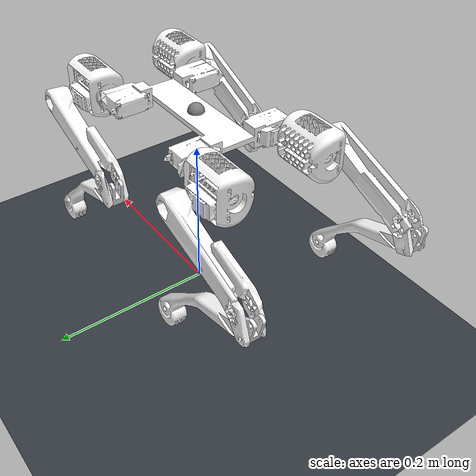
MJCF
<mujoco model="gray">
  <option timestep="0.002" integrator="implicitfast" cone="elliptic" impratio="10" /><compiler angle="radian" meshdir="./" autolimits="true" />

  <asset>
    <mesh name="base_link" content_type="model/stl" file="meshes/base_link.STL" />
    <mesh name="fl_hip" content_type="model/stl" file="meshes/fl_hip.STL" />
    <mesh name="fl_top" content_type="model/stl" file="meshes/fl_top.STL" />
    <mesh name="fl_bottom" content_type="model/stl" file="meshes/fl_bottom.STL" />
    <mesh name="fr_hip" content_type="model/stl" file="meshes/fr_hip.STL" />
    <mesh name="fr_top" content_type="model/stl" file="meshes/fr_top.STL" />
    <mesh name="fr_bottom" content_type="model/stl" file="meshes/fr_bottom.STL" />
    <mesh name="br_hip" content_type="model/stl" file="meshes/br_hip.STL" />
    <mesh name="br_top" content_type="model/stl" file="meshes/br_top.STL" />
    <mesh name="br_bottom" content_type="model/stl" file="meshes/br_bottom.STL" />
    <mesh name="bl_hip" content_type="model/stl" file="meshes/bl_hip.STL" />
    <mesh name="bl_top" content_type="model/stl" file="meshes/bl_top.STL" />
    <mesh name="bl_bottom" content_type="model/stl" file="meshes/bl_bottom.STL" />
  <texture name="grid" type="2d" builtin="checker" rgb1=".18 .20 .23" rgb2=".22 .24 .27" width="512" height="512" /><material name="grid" texture="grid" texrepeat="8 8" reflectance="0.1" /></asset>

  <worldbody>
    <light pos="0 0 2" dir="0 0 -1" directional="true" /><geom name="floor" type="plane" size="0 0 0.05" material="grid" condim="3" friction="0.8 0.005 0.0001" /><body name="base_link" pos="0 0 0.25"><freejoint name="root" /><inertial pos="-0.00000000 -0.00302360 -0.00000000" mass="0.723180" fullinertia="1.274255707e-04 5.217520436e-04 4.291599532e-04 -5.072049529e-21 6.558570651e-22 -2.085469317e-20" /><geom quat="0.707107 0.707107 0 0" type="mesh" contype="0" conaffinity="0" group="1" density="0" rgba="1 1 1 1" mesh="base_link" />
    <geom name="base_link_collision" size="0.0125 0.078781 0.0984" pos="0 0 -0.003" quat="0.707107 1.15612e-07 0.707107 -1.15612e-07" type="box" rgba="1 1 1 1" group="3" />
    <body name="fl_hip" pos="0.0984 0.060681 -0.0030292" quat="0.707107 0.707107 0 0">
      <inertial pos="0.0272971 1.7516e-05 0.0024743" quat="0.00572702 0.70048 0.0059102 0.713624" mass="0.089316" diaginertia="8.03296e-05 6.14064e-05 4.09378e-05" />
      <joint name="fl_hip" pos="0 0 0" axis="1 0 0" range="-2.356200 2.356200" actuatorfrcrange="-1.96 1.96" damping="0.05" frictionloss="0.01" armature="0.003" />
      <geom type="mesh" contype="0" conaffinity="0" group="1" density="0" rgba="1 1 1 1" mesh="fl_hip" />
      <geom name="fl_hip_collision" size="0.022512 0.029381 0.0336165" pos="0.028311 2.1e-05 0.0015" quat="0.706937 -0.00529736 0.707237 -0.00529948" type="box" rgba="1 1 1 1" group="3" />
      <body name="fl_top" pos="0.0386 -0.011483 -0.032232">
        <inertial pos="-0.0327094 -0.0129115 0.006261" quat="-0.0817632 0.681653 0.209568 0.696236" mass="0.106742" diaginertia="0.000113738 0.000112144 1.15416e-05" />
        <joint name="fl_top" pos="0 0 0" axis="0 0 -1" range="-2.356200 2.356200" actuatorfrcrange="-1.96 1.96" damping="0.05" frictionloss="0.01" armature="0.003" />
        <geom type="mesh" contype="0" conaffinity="0" group="1" density="0" rgba="1 1 1 1" mesh="fl_top" />
        <geom name="fl_top_collision" size="0.0206 0.03515 0.084913" pos="-0.06042 -0.027111 0.011157" quat="0.365097 0.359682 0.611701 0.602623" type="box" rgba="1 1 1 1" group="3" />
        <body name="fl_bottom" pos="-0.12132 -0.072387 -0.013569">
          <inertial pos="0.0784822 -0.0448672 0.00348749" quat="0.200781 0.678002 -0.190626 0.680927" mass="0.029326" diaginertia="5.22905e-05 5.16336e-05 2.17725e-06" />
          <joint name="fl_bottom" pos="0 0 0" axis="0 0 -1" range="-2.356200 2.356200" actuatorfrcrange="-1.96 1.96" damping="0.05" frictionloss="0.01" armature="0.003" />
          <geom type="mesh" contype="0" conaffinity="0" group="1" density="0" rgba="1 1 1 1" mesh="fl_bottom" />
          <geom name="fl_shank_collision" type="capsule" fromto="0 0 0 0.137671 -0.100124 0.004461" size="0.012" group="3" rgba="1 1 1 1" /><geom name="fl_bottom_collision" size="0.012" pos="0.137671 -0.100124 0.004461" rgba="1 1 1 1" group="3" />
        </body>
      </body>
    </body>
    <body name="fr_hip" pos="0.0984 -0.060681 -0.0030292" quat="0.707107 0.707107 0 0">
      <inertial pos="0.0272971 9.90276e-05 -0.00247239" quat="-0.0109028 0.713566 -0.0107763 0.700421" mass="0.089316" diaginertia="8.03296e-05 6.14064e-05 4.09378e-05" />
      <joint name="fr_hip" pos="0 0 0" axis="1 0 0" range="-2.356200 2.356200" actuatorfrcrange="-1.96 1.96" damping="0.05" frictionloss="0.01" armature="0.003" />
      <geom type="mesh" contype="0" conaffinity="0" group="1" density="0" rgba="1 1 1 1" mesh="fr_hip" />
      <geom name="fr_hip_collision" size="0.0225 0.029381 0.0336135" pos="0.028314 5e-05 -0.001499" quat="0.707015 0.0113734 0.707015 0.0113734" type="box" rgba="1 1 1 1" group="3" />
      <body name="fr_top" pos="0.0381 -0.012136 0.032026">
        <inertial pos="-0.0327864 -0.0126314 -0.00647694" quat="-0.214268 0.69476 0.0731701 0.682674" mass="0.106736" diaginertia="0.000113732 0.000112157 1.15212e-05" />
        <joint name="fr_top" pos="0 0 0" axis="0 0 1" range="-2.356200 2.356200" actuatorfrcrange="-1.96 1.96" damping="0.05" frictionloss="0.01" armature="0.003" />
        <geom type="mesh" contype="0" conaffinity="0" group="1" density="0" rgba="1 1 1 1" mesh="fr_top" />
        <geom name="fr_top_collision" size="0.0206535 0.03522 0.084926" pos="-0.060519 -0.026677 -0.01161" quat="0.360166 0.368217 0.597598 0.61447" type="box" rgba="1 1 1 1" group="3" />
        <body name="fr_bottom" pos="-0.121749 -0.0718844 0.0123443">
          <inertial pos="0.079147 -0.043374 -0.00421337" quat="0.178591 0.684182 -0.200508 0.678083" mass="0.029326" diaginertia="5.22904e-05 5.16335e-05 2.17725e-06" />
          <joint name="fr_bottom" pos="0 0 0" axis="0 0 1" range="-2.356200 2.356200" actuatorfrcrange="-1.96 1.96" damping="0.05" frictionloss="0.01" armature="0.003" />
          <geom type="mesh" contype="0" conaffinity="0" group="1" density="0" rgba="1 1 1 1" mesh="fr_bottom" />
          <geom name="fr_shank_collision" type="capsule" fromto="0 0 0 0.138941 -0.097521 -0.006355" size="0.012" group="3" rgba="1 1 1 1" /><geom name="fr_bottom_collision" size="0.012" pos="0.138941 -0.097521 -0.006355" rgba="1 1 1 1" group="3" />
        </body>
      </body>
    </body>
    <body name="br_hip" pos="-0.0984 -0.060681 -0.0030292" quat="0.707107 0.707107 0 0">
      <inertial pos="-0.0272971 -6.43744e-05 -0.00247352" quat="0.00586797 0.700479 0.00590231 0.713624" mass="0.089316" diaginertia="8.03296e-05 6.14064e-05 4.09378e-05" />
      <joint name="br_hip" pos="0 0 0" axis="-1 0 0" range="-2.356200 2.356200" actuatorfrcrange="-1.96 1.96" damping="0.05" frictionloss="0.01" armature="0.003" />
      <geom type="mesh" contype="0" conaffinity="0" group="1" density="0" rgba="1 1 1 1" mesh="br_hip" />
      <geom name="br_hip_collision" size="0.022501 0.029381 0.033614" pos="-0.028313 -2.9e-05 -0.0015" quat="0.707065 -0.00641807 0.707091 -0.00641878" type="box" rgba="1 1 1 1" group="3" />
      <body name="br_top" pos="-0.0186 -0.01041 0.0325944">
        <inertial pos="-0.0331307 -0.0121448 -0.0058478" quat="-0.190835 0.701296 0.077611 0.682453" mass="0.106736" diaginertia="0.000113735 0.000112243 1.14326e-05" />
        <joint name="br_top" pos="0 0 0" axis="0 0 1" range="-2.356200 2.356200" actuatorfrcrange="-1.96 1.96" damping="0.05" frictionloss="0.01" armature="0.003" />
        <geom type="mesh" contype="0" conaffinity="0" group="1" density="0" rgba="1 1 1 1" mesh="br_top" />
        <geom name="br_top_collision" size="0.0206 0.03515 0.0849325" pos="-0.061286 -0.025409 -0.01029" quat="0.375932 0.369168 0.606426 0.595515" type="box" rgba="1 1 1 1" group="3" />
        <body name="br_bottom" pos="-0.12368 -0.067775 0.015883">
          <inertial pos="0.079172 -0.0434855 -0.002027" quat="0.195553 0.679529 -0.183188 0.682966" mass="0.029326" diaginertia="5.22905e-05 5.16336e-05 2.17725e-06" />
          <joint name="br_bottom" pos="0 0 0" axis="0 0 1" range="-2.356200 2.356200" actuatorfrcrange="-1.96 1.96" damping="0.05" frictionloss="0.01" armature="0.003" />
          <geom type="mesh" contype="0" conaffinity="0" group="1" density="0" rgba="1 1 1 1" mesh="br_bottom" />
          <geom name="br_shank_collision" type="capsule" fromto="0 0 0 0.138997 -0.097637 -0.001443" size="0.012" group="3" rgba="1 1 1 1" /><geom name="br_bottom_collision" size="0.012" pos="0.138997 -0.097637 -0.001443" rgba="1 1 1 1" group="3" />
        </body>
      </body>
    </body>
    <body name="bl_hip" pos="-0.0984 0.0606812 -0.00302922" quat="0.707107 0.707107 0 0">
      <inertial pos="-0.0272971 -3.03826e-05 0.00247419" quat="-0.00776602 0.713607 -0.00754867 0.700463" mass="0.089316" diaginertia="8.03296e-05 6.14064e-05 4.09378e-05" />
      <joint name="bl_hip" pos="0 0 0" axis="-1 0 0" range="-2.356200 2.356200" actuatorfrcrange="-1.96 1.96" damping="0.05" frictionloss="0.01" armature="0.003" />
      <geom type="mesh" contype="0" conaffinity="0" group="1" density="0" rgba="1 1 1 1" mesh="bl_hip" />
      <geom name="bl_hip_collision" size="0.022536 0.029381 0.033624" pos="-0.028303 -2.9e-05 0.001499" quat="0.00716851 -0.706625 -0.00717794 0.707515" type="box" rgba="1 1 1 1" group="3" />
      <body name="bl_top" pos="-0.0181 -0.0103449 -0.0326151">
        <inertial pos="-0.033292 -0.0117614 0.00583146" quat="-0.0719708 0.683247 0.187305 0.702076" mass="0.106742" diaginertia="0.000113743 0.00011229 1.13915e-05" />
        <joint name="bl_top" pos="0 0 0" axis="0 0 -1" range="-2.356200 2.356200" actuatorfrcrange="-1.96 1.96" damping="0.05" frictionloss="0.01" armature="0.003" />
        <geom type="mesh" contype="0" conaffinity="0" group="1" density="0" rgba="1 1 1 1" mesh="bl_top" />
        <geom name="bl_top_collision" size="0.0205955 0.035213 0.0849245" pos="-0.061615 -0.024574 0.010253" quat="0.372869 0.380391 0.592728 0.604107" type="box" rgba="1 1 1 1" group="3" />
        <body name="bl_bottom" pos="-0.124596 -0.0660534 -0.0159843">
          <inertial pos="0.081727 -0.0387449 0.00203601" quat="0.16228 0.688234 -0.176119 0.684822" mass="0.029326" diaginertia="5.22904e-05 5.16336e-05 2.17721e-06" />
          <joint name="bl_bottom" pos="0 0 0" axis="0 0 -1" range="-2.356200 2.356200" actuatorfrcrange="-1.96 1.96" damping="0.05" frictionloss="0.01" armature="0.003" />
          <geom type="mesh" contype="0" conaffinity="0" group="1" density="0" rgba="1 1 1 1" mesh="bl_bottom" />
          <geom name="bl_shank_collision" type="capsule" fromto="0 0 0 0.14519 -0.089077 0.00141" size="0.012" group="3" rgba="1 1 1 1" /><geom name="bl_bottom_collision" size="0.012" pos="0.14519 -0.089077 0.00141" rgba="1 1 1 1" group="3" />
        </body>
      </body>
    </body>
  <site name="imu" pos="0 0 0" size="0.01" /></body></worldbody>
<visual><global offwidth="1920" offheight="1080" /></visual><contact><exclude body1="base_link" body2="fl_top" /><exclude body1="base_link" body2="fr_top" /><exclude body1="base_link" body2="br_top" /><exclude body1="base_link" body2="bl_top" /></contact><actuator><position name="fl_hip" joint="fl_hip" kp="20.0" kv="0.5" ctrlrange="-2.356200 2.356200" forcerange="-1.96 1.96" /><position name="fl_top" joint="fl_top" kp="20.0" kv="0.5" ctrlrange="-2.356200 2.356200" forcerange="-1.96 1.96" /><position name="fl_bottom" joint="fl_bottom" kp="20.0" kv="0.5" ctrlrange="-2.356200 2.356200" forcerange="-1.96 1.96" /><position name="fr_hip" joint="fr_hip" kp="20.0" kv="0.5" ctrlrange="-2.356200 2.356200" forcerange="-1.96 1.96" /><position name="fr_top" joint="fr_top" kp="20.0" kv="0.5" ctrlrange="-2.356200 2.356200" forcerange="-1.96 1.96" /><position name="fr_bottom" joint="fr_bottom" kp="20.0" kv="0.5" ctrlrange="-2.356200 2.356200" forcerange="-1.96 1.96" /><position name="br_hip" joint="br_hip" kp="20.0" kv="0.5" ctrlrange="-2.356200 2.356200" forcerange="-1.96 1.96" /><position name="br_top" joint="br_top" kp="20.0" kv="0.5" ctrlrange="-2.356200 2.356200" forcerange="-1.96 1.96" /><position name="br_bottom" joint="br_bottom" kp="20.0" kv="0.5" ctrlrange="-2.356200 2.356200" forcerange="-1.96 1.96" /><position name="bl_hip" joint="bl_hip" kp="20.0" kv="0.5" ctrlrange="-2.356200 2.356200" forcerange="-1.96 1.96" /><position name="bl_top" joint="bl_top" kp="20.0" kv="0.5" ctrlrange="-2.356200 2.356200" forcerange="-1.96 1.96" /><position name="bl_bottom" joint="bl_bottom" kp="20.0" kv="0.5" ctrlrange="-2.356200 2.356200" forcerange="-1.96 1.96" /></actuator><sensor><framequat name="imu_quat" objtype="site" objname="imu" /><gyro name="imu_gyro" site="imu" /><accelerometer name="imu_acc" site="imu" /></sensor></mujoco>
